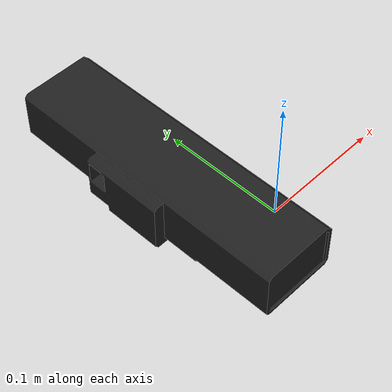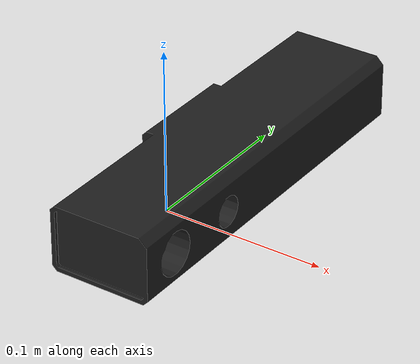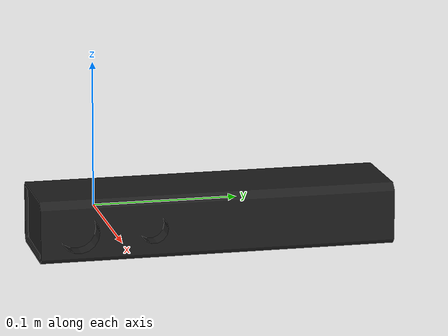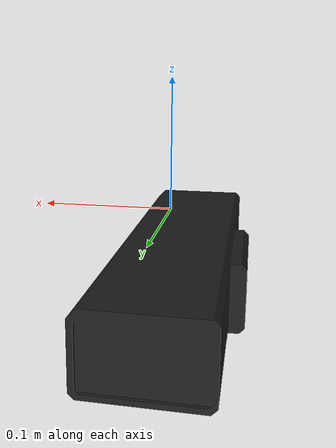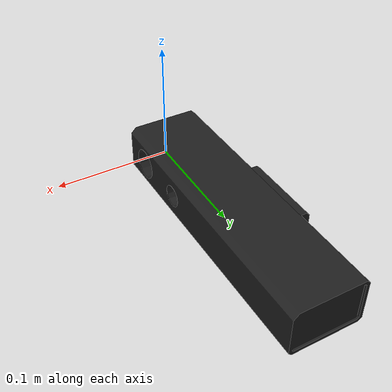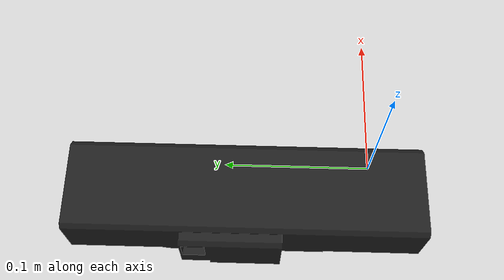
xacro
<?xml version='1.0'?>
<robot name='kinect_test' xmlns:xacro="http://www.ros.org/wiki/xacro">

  <xacro:property name="PI" value="3.1415926535897931"/>

  <link name="footprint" />
  <xacro:include filename="$(find kinect_description)/urdf/kinect/kinect2.xacro" />
  <xacro:sensor_kinect prefix="/" name="kinect2" parent="footprint" cam_px="0.0" cam_py="0.0" cam_pz="0.00" cam_or="0" cam_op="0" cam_oy="0" />

</robot>

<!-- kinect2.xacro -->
<robot name="kinect_sensor" xmlns:xacro="http://www.ros.org/wiki/xacro">
    <xacro:macro name="sensor_kinect" params="prefix name parent cam_px cam_py cam_pz cam_or cam_op cam_oy">
        <!-- Kinect sensor URDF part, cf. https://github.com/turtlebot/turtlebot
        and there turtlebot_description/urdf/sensors/kinect.xacro -->
        <joint name="${name}_rgb_joint" type="fixed">
            <parent link="${parent}"/>
            <child link="${name}_rgb_frame"/>
            <origin xyz="${cam_px} ${cam_py} ${cam_pz}" rpy="${cam_or} ${cam_op} ${cam_oy}"/>
        </joint>

        <link name="${name}_rgb_frame"/>

        <joint name="${name}_rgb_optical_joint" type="fixed">
            <parent link="${name}_rgb_frame"/>
            <child link="${name}_rgb_optical_frame"/>
            <origin xyz="0 0 0" rpy="-1.57 0 -1.57"/>
        </joint>

        <link name="${name}_rgb_optical_frame"/>

        <joint name="${name}_joint" type="fixed">
            <parent link="${name}_rgb_frame"/>
            <child link="${name}_link"/>
            <origin xyz="0 -0.0125 -0.016" rpy="0 0 0"/>
        </joint>

        <link name="${name}_link">
            <visual>
                <geometry>
                    <mesh filename="package://kinect_description/meshes/sensors/kinect2.stl" scale="0.001 0.001 0.001"/>
                </geometry>
                <origin xyz="0 0 0" rpy="-1.57 0 -1.57"/>
                <material name="black"/>
            </visual>

            <collision>
                <geometry>
                    <box size=".1 .3 .1"/>
                </geometry>
                <contact_coefficients mu="0" kp="1000.0" kd="1.0"/>
            </collision>

            <inertial>
                <mass value="8.1"/>
                <inertia ixx="0.0675" ixy="0.0" ixz="0.0"
                         iyy="0.0135" iyz="0.0"
                         izz="0.0675"/>
            </inertial>
        </link>

        <joint name="${name}_depth_joint" type="fixed">
            <parent link="${name}_rgb_frame"/>
            <child link="${name}_depth_frame"/>
            <origin xyz="0 -0.025 0" rpy="0 0 0"/>
        </joint>

        <link name="${name}_depth_frame"/>

        <joint name="${name}_depth_optical_joint" type="fixed">
            <parent link="${name}_depth_frame"/>
            <child link="${name}_depth_optical_frame"/>
            <origin xyz="0 0 0" rpy="-1.57 0 -1.57"/>
        </joint>

        <link name="${name}_depth_optical_frame"/>

        <!-- Not sure why in a macro arguments cannot be passed to an
        associated .gazebo.xacro file... -->
        <!-- See https://github.com/turtlebot/turtlebot and there
        turtlebot_description/urdf/turtlebot_gazebo.urdf.xacro -->
        <gazebo reference="${name}_link">
            <sensor name="${name}_sensor" type="depth">
                <always_on>true</always_on>
                <update_rate>30.0</update_rate>
                <camera>
                    <horizontal_fov>${70.0*3.14/180.0}</horizontal_fov>
                    <image>
                        <width>512</width>
                        <height>424</height>
                        <format>L8</format>
                    </image>
                    <clip>
                        <near>0.1</near>
                        <far>8.0</far>
                    </clip>
                    <noise>
                        <type>gaussian</type>
                        <mean>0.0</mean>
                        <stddev>0.05</stddev>
                    </noise>
                </camera>
                <plugin name="${name}_sensor_controller"
                        filename="libgazebo_ros_openni_kinect.so">
                    <cameraName>${name}</cameraName>
                    <alwaysOn>true</alwaysOn>
                    <updateRate>30.0</updateRate>
                    <imageTopicName>sd/image_ir_rect</imageTopicName>
                    <depthImageTopicName>sd/image_depth_rect</depthImageTopicName>
                    <pointCloudTopicName>sd/points</pointCloudTopicName>
                    <cameraInfoTopicName>sd/camera_info</cameraInfoTopicName>
                    <frameName>${name}_depth_optical_frame</frameName>
                    <pointCloudCutoff>0.5</pointCloudCutoff>
                    <pointCloudCutoffMax>4.5</pointCloudCutoffMax>
                    <baseline>0.1</baseline>
                    <distortionK1>0.0</distortionK1>
                    <distortionK2>0.0</distortionK2>
                    <distortionK3>0.0</distortionK3>
                    <distortionT1>0.0</distortionT1>
                    <distortionT2>0.0</distortionT2>
                    <robotNamespace>${prefix}</robotNamespace>
                </plugin>
            </sensor>
        </gazebo>
        <gazebo reference="${name}_link">
            <sensor name="${name}_camera" type="camera">
                <always_on>true</always_on>
                <update_rate>5.0</update_rate>
                <camera name="${name}_camera">
                    <horizontal_fov>${70.0*3.14/180.0}</horizontal_fov>
                    <image>
                        <width>1920</width>
                        <height>1080</height>
                        <format>R8G8B8</format>
                    </image>
                    <clip>
                        <near>0.02</near>
                        <far>10.0</far>
                    </clip>
                    <noise>
                        <type>gaussian</type>
                        <mean>0.0</mean>
                        <stddev>0.002</stddev>
                    </noise>
                </camera>
                <plugin name="${name}_camera_controller"
                        filename="libgazebo_ros_camera.so">
                    <alwaysOn>true</alwaysOn>
                    <update_rate>5.0</update_rate>
                    <cameraName>${name}</cameraName>
                    <imageTopicName>hd/image_color_rect</imageTopicName>
                    <cameraInfoTopicName>hd/camera_info</cameraInfoTopicName>
                    <frameName>${name}_rgb_optical_frame</frameName>
                    <baseline>0.1</baseline>
                    <distortionK1>0.0</distortionK1>
                    <distortionK2>0.0</distortionK2>
                    <distortionK3>0.0</distortionK3>
                    <distortionT1>0.0</distortionT1>
                    <distortionT2>0.0</distortionT2>
                    <robotNamespace>${prefix}</robotNamespace>
                </plugin>
            </sensor>
        </gazebo>
    </xacro:macro>
</robot>
